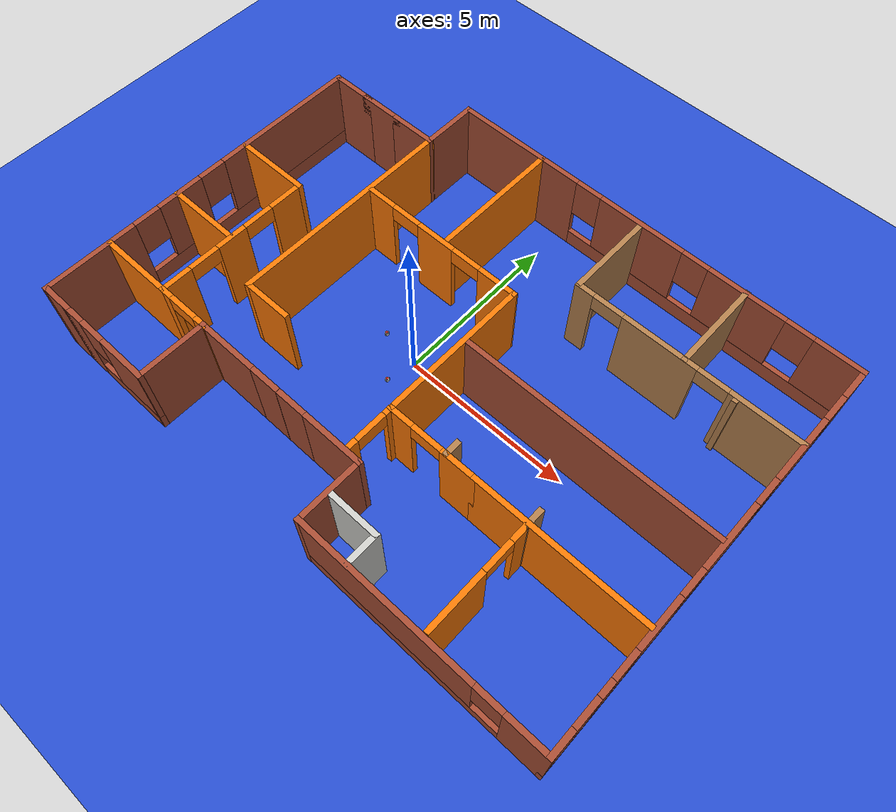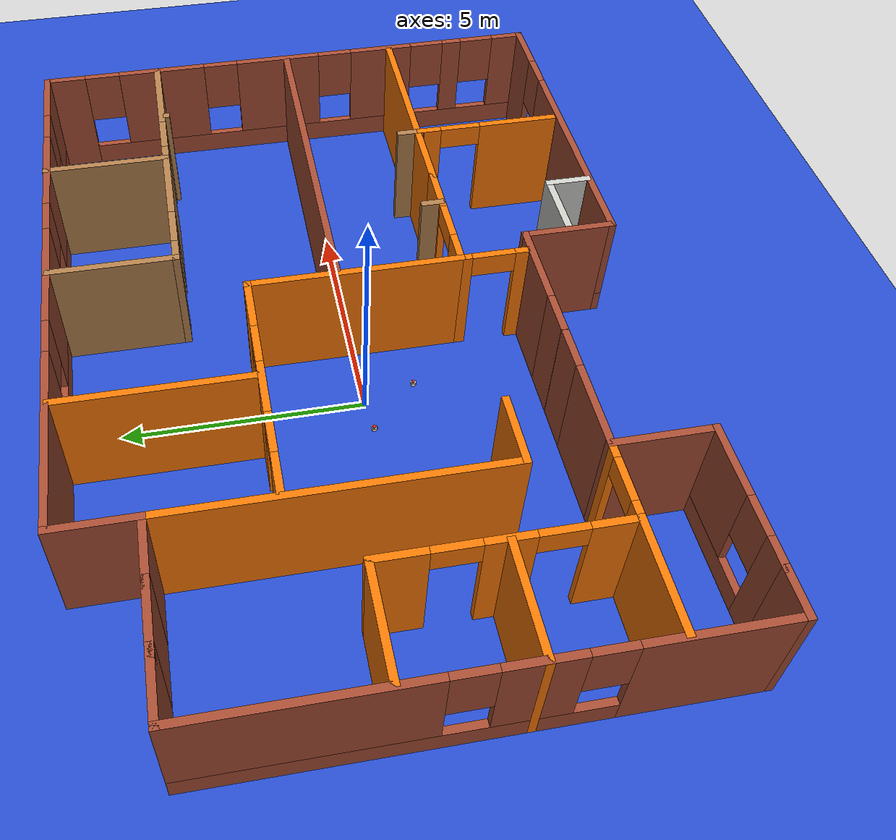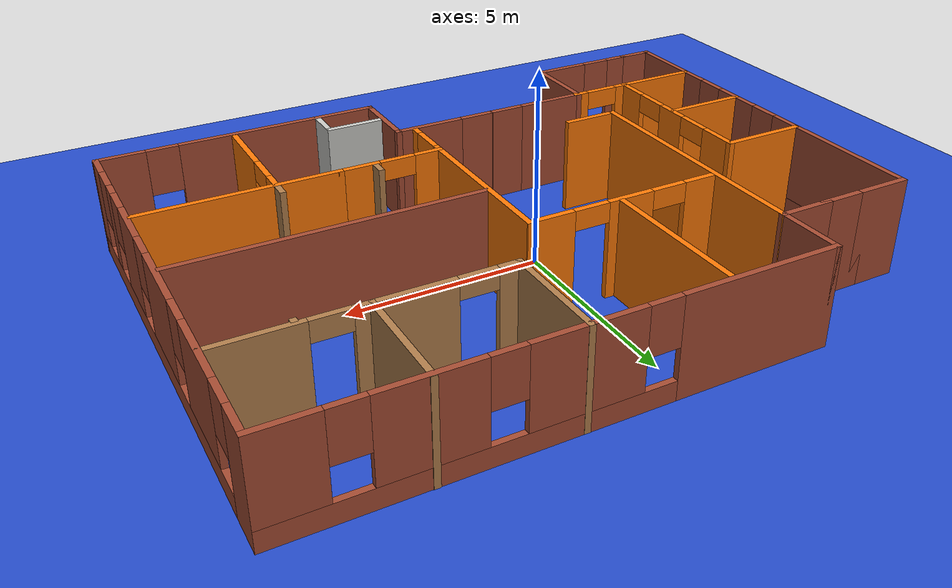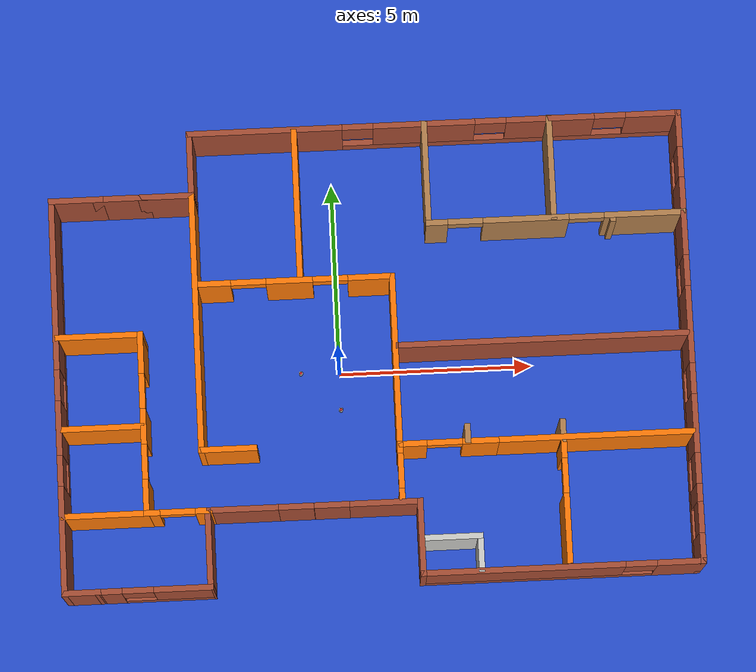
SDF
<sdf version="1.9">
 <world name="diff_drive">
  <physics name="default_physics" default="false" type="ode">
   <max_step_size>0.001</max_step_size>
   <real_time_factor>1</real_time_factor>
   <real_time_update_rate>1000</real_time_update_rate>
  </physics>
  <plugin name="ignition::gazebo::systems::Physics" filename="ignition-gazebo-physics-system"/>
  <plugin name="ignition::gazebo::systems::SceneBroadcaster" filename="ignition-gazebo-scene-broadcaster-system"/>
  <plugin name="gz::sim::systems::Sensors" filename="ignition-gazebo-sensors-system">
   <render_engine>ogre1</render_engine>
  </plugin>
  <gravity>0 0 -9.8</gravity>
  <magnetic_field>6e-06 2.3e-05 -4.2e-05</magnetic_field>
  <atmosphere type="adiabatic"/>
  <scene><ambient>0.4 0.4 0.4 1</ambient><background>0.7 0.7 0.7 1</background><shadows>true</shadows></scene>
  <model name="office">
   <pose>0.904802 0.213699 0 0 -0 0</pose>
   <link name="Wall_10">
    <collision name="Wall_10_Collision">
     <geometry><box><size>1 0.15 2.5</size></box></geometry>
     <pose>0 0 1.25 0 -0 0</pose>
    </collision>
    <visual name="Wall_10_Visual">
     <pose>0 0 1.25 0 -0 0</pose>
     <geometry><box><size>1 0.15 2.5</size></box></geometry>
     <material>
      <script><uri>file://media/materials/scripts/gazebo.material</uri><name>Gazebo/Bricks</name></script>
      <ambient>1 1 1 1</ambient>
     </material>
     <meta><layer>0</layer></meta>
    </visual>
    <pose>-7.67457 -5.85749 0 0 -0 3.14159</pose>
   </link>
   <link name="Wall_11">
    <pose>-8.09957 -0.807493 0 0 -0 1.5708</pose>
    <visual name="Wall_11_Visual_0">
     <pose>-3.7208 0 1.25 0 -0 0</pose>
     <geometry><box><size>2.8084 0.15 2.5</size></box></geometry>
     <material>
      <script><uri>file://media/materials/scripts/gazebo.material</uri><name>Gazebo/Bricks</name></script>
      <ambient>1 1 1 1</ambient>
     </material>
     <meta><layer>0</layer></meta>
    </visual>
    <collision name="Wall_11_Collision_0">
     <geometry><box><size>2.8084 0.15 2.5</size></box></geometry>
     <pose>-3.7208 0 1.25 0 -0 0</pose>
    </collision>
    <visual name="Wall_11_Visual_1">
     <pose>1.4042 0 0.25 0 -0 0</pose>
     <geometry><box><size>7.4416 0.15 0.5</size></box></geometry>
     <material>
      <script><uri>file://media/materials/scripts/gazebo.material</uri><name>Gazebo/Bricks</name></script>
      <ambient>1 1 1 1</ambient>
     </material>
     <meta><layer>0</layer></meta>
    </visual>
    <collision name="Wall_11_Collision_1">
     <geometry><box><size>7.4416 0.15 0.5</size></box></geometry>
     <pose>1.4042 0 0.25 0 -0 0</pose>
    </collision>
    <visual name="Wall_11_Visual_2">
     <pose>-0.81473 0 1.5 0 -0 0</pose>
     <geometry><box><size>1.40375 0.15 2</size></box></geometry>
     <material>
      <script><uri>file://media/materials/scripts/gazebo.material</uri><name>Gazebo/Bricks</name></script>
      <ambient>1 1 1 1</ambient>
     </material>
     <meta><layer>0</layer></meta>
    </visual>
    <collision name="Wall_11_Collision_2">
     <geometry><box><size>1.40375 0.15 2</size></box></geometry>
     <pose>-0.81473 0 1.5 0 -0 0</pose>
    </collision>
    <visual name="Wall_11_Visual_3">
     <pose>2.90607 0 1.5 0 -0 0</pose>
     <geometry><box><size>4.43786 0.15 2</size></box></geometry>
     <material>
      <script><uri>file://media/materials/scripts/gazebo.material</uri><name>Gazebo/Bricks</name></script>
      <ambient>1 1 1 1</ambient>
     </material>
     <meta><layer>0</layer></meta>
    </visual>
    <collision name="Wall_11_Collision_3">
     <geometry><box><size>4.43786 0.15 2</size></box></geometry>
     <pose>2.90607 0 1.5 0 -0 0</pose>
    </collision>
    <visual name="Wall_11_Visual_4">
     <pose>-1.9166 0 1.9 0 -0 0</pose>
     <geometry><box><size>0.8 0.15 1.2</size></box></geometry>
     <material>
      <script><uri>file://media/materials/scripts/gazebo.material</uri><name>Gazebo/Bricks</name></script>
      <ambient>1 1 1 1</ambient>
     </material>
     <meta><layer>0</layer></meta>
    </visual>
    <collision name="Wall_11_Collision_4">
     <geometry><box><size>0.8 0.15 1.2</size></box></geometry>
     <pose>-1.9166 0 1.9 0 -0 0</pose>
    </collision>
    <visual name="Wall_11_Visual_5">
     <pose>0.287144 0 1.9 0 -0 0</pose>
     <geometry><box><size>0.8 0.15 1.2</size></box></geometry>
     <material>
      <script><uri>file://media/materials/scripts/gazebo.material</uri><name>Gazebo/Bricks</name></script>
      <ambient>1 1 1 1</ambient>
     </material>
     <meta><layer>0</layer></meta>
    </visual>
    <collision name="Wall_11_Collision_5">
     <geometry><box><size>0.8 0.15 1.2</size></box></geometry>
     <pose>0.287144 0 1.9 0 -0 0</pose>
    </collision>
   </link>
   <link name="Wall_12">
    <pose>-6.29957 4.24251 0 0 -0 0</pose>
    <visual name="Wall_12_Visual_0">
     <pose>-1.17034 0 1.25 0 -0 0</pose>
     <geometry><box><size>1.40932 0.15 2.5</size></box></geometry>
     <material>
      <script><uri>file://media/materials/scripts/gazebo.material</uri><name>Gazebo/Bricks</name></script>
      <ambient>1 1 1 1</ambient>
     </material>
     <meta><layer>0</layer></meta>
    </visual>
    <collision name="Wall_12_Collision_0">
     <geometry><box><size>1.40932 0.15 2.5</size></box></geometry>
     <pose>-1.17034 0 1.25 0 -0 0</pose>
    </collision>
    <visual name="Wall_12_Visual_1">
     <pose>1.15466 0 1.25 0 -0 0</pose>
     <geometry><box><size>1.44068 0.15 2.5</size></box></geometry>
     <material>
      <script><uri>file://media/materials/scripts/gazebo.material</uri><name>Gazebo/Bricks</name></script>
      <ambient>1 1 1 1</ambient>
     </material>
     <meta><layer>0</layer></meta>
    </visual>
    <collision name="Wall_12_Collision_1">
     <geometry><box><size>1.44068 0.15 2.5</size></box></geometry>
     <pose>1.15466 0 1.25 0 -0 0</pose>
    </collision>
    <visual name="Wall_12_Visual_2">
     <pose>-0.015683 0 1.25 0 -0 0</pose>
     <geometry><box><size>1.44068 0.15 2.5</size></box></geometry>
     <material>
      <script><uri>file://media/materials/scripts/gazebo.material</uri><name>Gazebo/Bricks</name></script>
      <ambient>1 1 1 1</ambient>
     </material>
     <meta><layer>0</layer></meta>
    </visual>
    <collision name="Wall_12_Collision_2">
     <geometry><box><size>1.44068 0.15 2.5</size></box></geometry>
     <pose>-0.015683 0 1.25 0 -0 0</pose>
    </collision>
   </link>
   <link name="Wall_13">
    <collision name="Wall_13_Collision">
     <geometry><box><size>1.75 0.15 2.5</size></box></geometry>
     <pose>0 0 1.25 0 -0 0</pose>
    </collision>
    <visual name="Wall_13_Visual">
     <pose>0 0 1.25 0 -0 0</pose>
     <geometry><box><size>1.75 0.15 2.5</size></box></geometry>
     <material>
      <script><uri>file://media/materials/scripts/gazebo.material</uri><name>Gazebo/Bricks</name></script>
      <ambient>1 1 1 1</ambient>
     </material>
     <meta><layer>0</layer></meta>
    </visual>
    <pose>-4.49957 5.04251 0 0 -0 1.5708</pose>
   </link>
   <link name="Wall_14">
    <pose>1.80043 5.84251 0 0 -0 0</pose>
    <visual name="Wall_14_Visual_0">
     <pose>-4.36709 0 1.25 0 -0 0</pose>
     <geometry><box><size>4.01582 0.15 2.5</size></box></geometry>
     <material>
      <script><uri>file://media/materials/scripts/gazebo.material</uri><name>Gazebo/Bricks</name></script>
      <ambient>1 1 1 1</ambient>
     </material>
     <meta><layer>0</layer></meta>
    </visual>
    <collision name="Wall_14_Collision_0">
     <geometry><box><size>4.01582 0.15 2.5</size></box></geometry>
     <pose>-4.36709 0 1.25 0 -0 0</pose>
    </collision>
    <visual name="Wall_14_Visual_1">
     <pose>2.00791 0 0.25 0 -0 0</pose>
     <geometry><box><size>8.73418 0.15 0.5</size></box></geometry>
     <material>
      <script><uri>file://media/materials/scripts/gazebo.material</uri><name>Gazebo/Bricks</name></script>
      <ambient>1 1 1 1</ambient>
     </material>
     <meta><layer>0</layer></meta>
    </visual>
    <collision name="Wall_14_Collision_1">
     <geometry><box><size>8.73418 0.15 0.5</size></box></geometry>
     <pose>2.00791 0 0.25 0 -0 0</pose>
    </collision>
    <visual name="Wall_14_Visual_2">
     <pose>-0.245155 0 1.5 0 -0 0</pose>
     <geometry><box><size>2.62805 0.15 2</size></box></geometry>
     <material>
      <script><uri>file://media/materials/scripts/gazebo.material</uri><name>Gazebo/Bricks</name></script>
      <ambient>1 1 1 1</ambient>
     </material>
     <meta><layer>0</layer></meta>
    </visual>
    <collision name="Wall_14_Collision_2">
     <geometry><box><size>2.62805 0.15 2</size></box></geometry>
     <pose>-0.245155 0 1.5 0 -0 0</pose>
    </collision>
    <visual name="Wall_14_Visual_3">
     <pose>3.008 0 1.5 0 -0 0</pose>
     <geometry><box><size>2.27825 0.15 2</size></box></geometry>
     <material>
      <script><uri>file://media/materials/scripts/gazebo.material</uri><name>Gazebo/Bricks</name></script>
      <ambient>1 1 1 1</ambient>
     </material>
     <meta><layer>0</layer></meta>
    </visual>
    <collision name="Wall_14_Collision_3">
     <geometry><box><size>2.27825 0.15 2</size></box></geometry>
     <pose>3.008 0 1.5 0 -0 0</pose>
    </collision>
    <visual name="Wall_14_Visual_4">
     <pose>5.66106 0 1.5 0 -0 0</pose>
     <geometry><box><size>1.42788 0.15 2</size></box></geometry>
     <material>
      <script><uri>file://media/materials/scripts/gazebo.material</uri><name>Gazebo/Bricks</name></script>
      <ambient>1 1 1 1</ambient>
     </material>
     <meta><layer>0</layer></meta>
    </visual>
    <collision name="Wall_14_Collision_4">
     <geometry><box><size>1.42788 0.15 2</size></box></geometry>
     <pose>5.66106 0 1.5 0 -0 0</pose>
    </collision>
    <visual name="Wall_14_Visual_5">
     <pose>-1.95918 0 1.9 0 -0 0</pose>
     <geometry><box><size>0.8 0.15 1.2</size></box></geometry>
     <material>
      <script><uri>file://media/materials/scripts/gazebo.material</uri><name>Gazebo/Bricks</name></script>
      <ambient>1 1 1 1</ambient>
     </material>
     <meta><layer>0</layer></meta>
    </visual>
    <collision name="Wall_14_Collision_5">
     <geometry><box><size>0.8 0.15 1.2</size></box></geometry>
     <pose>-1.95918 0 1.9 0 -0 0</pose>
    </collision>
    <visual name="Wall_14_Visual_6">
     <pose>1.46887 0 1.9 0 -0 0</pose>
     <geometry><box><size>0.8 0.15 1.2</size></box></geometry>
     <material>
      <script><uri>file://media/materials/scripts/gazebo.material</uri><name>Gazebo/Bricks</name></script>
      <ambient>1 1 1 1</ambient>
     </material>
     <meta><layer>0</layer></meta>
    </visual>
    <collision name="Wall_14_Collision_6">
     <geometry><box><size>0.8 0.15 1.2</size></box></geometry>
     <pose>1.46887 0 1.9 0 -0 0</pose>
    </collision>
    <visual name="Wall_14_Visual_7">
     <pose>4.54712 0 1.9 0 -0 0</pose>
     <geometry><box><size>0.8 0.15 1.2</size></box></geometry>
     <material>
      <script><uri>file://media/materials/scripts/gazebo.material</uri><name>Gazebo/Bricks</name></script>
      <ambient>1 1 1 1</ambient>
     </material>
     <meta><layer>0</layer></meta>
    </visual>
    <collision name="Wall_14_Collision_7">
     <geometry><box><size>0.8 0.15 1.2</size></box></geometry>
     <pose>4.54712 0 1.9 0 -0 0</pose>
    </collision>
   </link>
   <link name="Wall_15">
    <pose>8.10043 0.042507 0 0 0 -1.5708</pose>
    <visual name="Wall_15_Visual_0">
     <pose>-5.39213 0 1.25 0 -0 0</pose>
     <geometry><box><size>0.965738 0.15 2.5</size></box></geometry>
     <material>
      <script><uri>file://media/materials/scripts/gazebo.material</uri><name>Gazebo/Bricks</name></script>
      <ambient>1 1 1 1</ambient>
     </material>
     <meta><layer>0</layer></meta>
    </visual>
    <collision name="Wall_15_Collision_0">
     <geometry><box><size>0.965738 0.15 2.5</size></box></geometry>
     <pose>-5.39213 0 1.25 0 -0 0</pose>
    </collision>
    <visual name="Wall_15_Visual_1">
     <pose>0.482869 0 0.25 0 -0 0</pose>
     <geometry><box><size>10.7843 0.15 0.5</size></box></geometry>
     <material>
      <script><uri>file://media/materials/scripts/gazebo.material</uri><name>Gazebo/Bricks</name></script>
      <ambient>1 1 1 1</ambient>
     </material>
     <meta><layer>0</layer></meta>
    </visual>
    <collision name="Wall_15_Collision_1">
     <geometry><box><size>10.7843 0.15 0.5</size></box></geometry>
     <pose>0.482869 0 0.25 0 -0 0</pose>
    </collision>
    <visual name="Wall_15_Visual_2">
     <pose>-3.09257 0 1.5 0 -0 0</pose>
     <geometry><box><size>2.03339 0.15 2</size></box></geometry>
     <material>
      <script><uri>file://media/materials/scripts/gazebo.material</uri><name>Gazebo/Bricks</name></script>
      <ambient>1 1 1 1</ambient>
     </material>
     <meta><layer>0</layer></meta>
    </visual>
    <collision name="Wall_15_Collision_2">
     <geometry><box><size>2.03339 0.15 2</size></box></geometry>
     <pose>-3.09257 0 1.5 0 -0 0</pose>
    </collision>
    <visual name="Wall_15_Visual_3">
     <pose>-0.276667 0 1.5 0 -0 0</pose>
     <geometry><box><size>1.99841 0.15 2</size></box></geometry>
     <material>
      <script><uri>file://media/materials/scripts/gazebo.material</uri><name>Gazebo/Bricks</name></script>
      <ambient>1 1 1 1</ambient>
     </material>
     <meta><layer>0</layer></meta>
    </visual>
    <collision name="Wall_15_Collision_3">
     <geometry><box><size>1.99841 0.15 2</size></box></geometry>
     <pose>-0.276667 0 1.5 0 -0 0</pose>
    </collision>
    <visual name="Wall_15_Visual_4">
     <pose>2.27688 0 1.5 0 -0 0</pose>
     <geometry><box><size>1.50869 0.15 2</size></box></geometry>
     <material>
      <script><uri>file://media/materials/scripts/gazebo.material</uri><name>Gazebo/Bricks</name></script>
      <ambient>1 1 1 1</ambient>
     </material>
     <meta><layer>0</layer></meta>
    </visual>
    <collision name="Wall_15_Collision_4">
     <geometry><box><size>1.50869 0.15 2</size></box></geometry>
     <pose>2.27688 0 1.5 0 -0 0</pose>
    </collision>
    <visual name="Wall_15_Visual_5">
     <pose>4.06087 0 1.5 0 -0 0</pose>
     <geometry><box><size>0.459284 0.15 2</size></box></geometry>
     <material>
      <script><uri>file://media/materials/scripts/gazebo.material</uri><name>Gazebo/Bricks</name></script>
      <ambient>1 1 1 1</ambient>
     </material>
     <meta><layer>0</layer></meta>
    </visual>
    <collision name="Wall_15_Collision_5">
     <geometry><box><size>0.459284 0.15 2</size></box></geometry>
     <pose>4.06087 0 1.5 0 -0 0</pose>
    </collision>
    <visual name="Wall_15_Visual_6">
     <pose>5.48276 0 1.5 0 -0 0</pose>
     <geometry><box><size>0.784489 0.15 2</size></box></geometry>
     <material>
      <script><uri>file://media/materials/scripts/gazebo.material</uri><name>Gazebo/Bricks</name></script>
      <ambient>1 1 1 1</ambient>
     </material>
     <meta><layer>0</layer></meta>
    </visual>
    <collision name="Wall_15_Collision_6">
     <geometry><box><size>0.784489 0.15 2</size></box></geometry>
     <pose>5.48276 0 1.5 0 -0 0</pose>
    </collision>
    <visual name="Wall_15_Visual_7">
     <pose>-4.50926 0 1.9 0 -0 0</pose>
     <geometry><box><size>0.8 0.15 1.2</size></box></geometry>
     <material>
      <script><uri>file://media/materials/scripts/gazebo.material</uri><name>Gazebo/Bricks</name></script>
      <ambient>1 1 1 1</ambient>
     </material>
     <meta><layer>0</layer></meta>
    </visual>
    <collision name="Wall_15_Collision_7">
     <geometry><box><size>0.8 0.15 1.2</size></box></geometry>
     <pose>-4.50926 0 1.9 0 -0 0</pose>
    </collision>
    <visual name="Wall_15_Visual_8">
     <pose>-1.67587 0 1.9 0 -0 0</pose>
     <geometry><box><size>0.8 0.15 1.2</size></box></geometry>
     <material>
      <script><uri>file://media/materials/scripts/gazebo.material</uri><name>Gazebo/Bricks</name></script>
      <ambient>1 1 1 1</ambient>
     </material>
     <meta><layer>0</layer></meta>
    </visual>
    <collision name="Wall_15_Collision_8">
     <geometry><box><size>0.8 0.15 1.2</size></box></geometry>
     <pose>-1.67587 0 1.9 0 -0 0</pose>
    </collision>
    <visual name="Wall_15_Visual_9">
     <pose>1.12254 0 1.9 0 -0 0</pose>
     <geometry><box><size>0.8 0.15 1.2</size></box></geometry>
     <material>
      <script><uri>file://media/materials/scripts/gazebo.material</uri><name>Gazebo/Bricks</name></script>
      <ambient>1 1 1 1</ambient>
     </material>
     <meta><layer>0</layer></meta>
    </visual>
    <collision name="Wall_15_Collision_9">
     <geometry><box><size>0.8 0.15 1.2</size></box></geometry>
     <pose>1.12254 0 1.9 0 -0 0</pose>
    </collision>
    <visual name="Wall_15_Visual_10">
     <pose>3.43123 0 1.9 0 -0 0</pose>
     <geometry><box><size>0.8 0.15 1.2</size></box></geometry>
     <material>
      <script><uri>file://media/materials/scripts/gazebo.material</uri><name>Gazebo/Bricks</name></script>
      <ambient>1 1 1 1</ambient>
     </material>
     <meta><layer>0</layer></meta>
    </visual>
    <collision name="Wall_15_Collision_10">
     <geometry><box><size>0.8 0.15 1.2</size></box></geometry>
     <pose>3.43123 0 1.9 0 -0 0</pose>
    </collision>
    <visual name="Wall_15_Visual_11">
     <pose>4.69051 0 1.9 0 -0 0</pose>
     <geometry><box><size>0.8 0.15 1.2</size></box></geometry>
     <material>
      <script><uri>file://media/materials/scripts/gazebo.material</uri><name>Gazebo/Bricks</name></script>
      <ambient>1 1 1 1</ambient>
     </material>
     <meta><layer>0</layer></meta>
    </visual>
    <collision name="Wall_15_Collision_11">
     <geometry><box><size>0.8 0.15 1.2</size></box></geometry>
     <pose>4.69051 0 1.9 0 -0 0</pose>
    </collision>
   </link>
   <link name="Wall_21">
    <pose>4.55043 -5.75749 0 0 -0 3.14159</pose>
    <visual name="Wall_21_Visual_0">
     <pose>-2.99851 0 1.25 0 -0 0</pose>
     <geometry><box><size>1.25298 0.15 2.5</size></box></geometry>
     <material>
      <script><uri>file://media/materials/scripts/gazebo.material</uri><name>Gazebo/Bricks</name></script>
      <ambient>1 1 1 1</ambient>
     </material>
     <meta><layer>0</layer></meta>
    </visual>
    <collision name="Wall_21_Collision_0">
     <geometry><box><size>1.25298 0.15 2.5</size></box></geometry>
     <pose>-2.99851 0 1.25 0 -0 0</pose>
    </collision>
    <visual name="Wall_21_Visual_1">
     <pose>0.626488 0 0.25 0 -0 0</pose>
     <geometry><box><size>5.99702 0.15 0.5</size></box></geometry>
     <material>
      <script><uri>file://media/materials/scripts/gazebo.material</uri><name>Gazebo/Bricks</name></script>
      <ambient>1 1 1 1</ambient>
     </material>
     <meta><layer>0</layer></meta>
    </visual>
    <collision name="Wall_21_Collision_1">
     <geometry><box><size>5.99702 0.15 0.5</size></box></geometry>
     <pose>0.626488 0 0.25 0 -0 0</pose>
    </collision>
    <visual name="Wall_21_Visual_2">
     <pose>1.02649 0 1.5 0 -0 0</pose>
     <geometry><box><size>5.19702 0.15 2</size></box></geometry>
     <material>
      <script><uri>file://media/materials/scripts/gazebo.material</uri><name>Gazebo/Bricks</name></script>
      <ambient>1 1 1 1</ambient>
     </material>
     <meta><layer>0</layer></meta>
    </visual>
    <collision name="Wall_21_Collision_2">
     <geometry><box><size>5.19702 0.15 2</size></box></geometry>
     <pose>1.02649 0 1.5 0 -0 0</pose>
    </collision>
    <visual name="Wall_21_Visual_3">
     <pose>-1.97202 0 1.9 0 -0 0</pose>
     <geometry><box><size>0.8 0.15 1.2</size></box></geometry>
     <material>
      <script><uri>file://media/materials/scripts/gazebo.material</uri><name>Gazebo/Bricks</name></script>
      <ambient>1 1 1 1</ambient>
     </material>
     <meta><layer>0</layer></meta>
    </visual>
    <collision name="Wall_21_Collision_3">
     <geometry><box><size>0.8 0.15 1.2</size></box></geometry>
     <pose>-1.97202 0 1.9 0 -0 0</pose>
    </collision>
   </link>
   <link name="Wall_22">
    <collision name="Wall_22_Collision">
     <geometry><box><size>2 0.15 2.5</size></box></geometry>
     <pose>0 0 1.25 0 -0 0</pose>
    </collision>
    <visual name="Wall_22_Visual">
     <pose>0 0 1.25 0 -0 0</pose>
     <geometry><box><size>2 0.15 2.5</size></box></geometry>
     <material>
      <script><uri>file://media/materials/scripts/gazebo.material</uri><name>Gazebo/Bricks</name></script>
      <ambient>1 1 1 1</ambient>
     </material>
     <meta><layer>0</layer></meta>
    </visual>
    <pose>1.00043 -4.83249 0 0 -0 1.5708</pose>
   </link>
   <link name="Wall_23">
    <pose>-1.67457 -3.90749 0 0 -0 3.14159</pose>
    <visual name="Wall_23_Visual_0">
     <pose>-1.81572 0 1.25 0 -0 0</pose>
     <geometry><box><size>1.86857 0.15 2.5</size></box></geometry>
     <material>
      <script><uri>file://media/materials/scripts/gazebo.material</uri><name>Gazebo/Bricks</name></script>
      <ambient>1 1 1 1</ambient>
     </material>
     <meta><layer>0</layer></meta>
    </visual>
    <collision name="Wall_23_Collision_0">
     <geometry><box><size>1.86857 0.15 2.5</size></box></geometry>
     <pose>-1.81572 0 1.25 0 -0 0</pose>
    </collision>
    <visual name="Wall_23_Visual_1">
     <pose>0.023306 0 1.25 0 -0 0</pose>
     <geometry><box><size>0.009483 0.15 2.5</size></box></geometry>
     <material>
      <script><uri>file://media/materials/scripts/gazebo.material</uri><name>Gazebo/Bricks</name></script>
      <ambient>1 1 1 1</ambient>
     </material>
     <meta><layer>0</layer></meta>
    </visual>
    <collision name="Wall_23_Collision_1">
     <geometry><box><size>0.009483 0.15 2.5</size></box></geometry>
     <pose>0.023306 0 1.25 0 -0 0</pose>
    </collision>
    <visual name="Wall_23_Visual_2">
     <pose>1.83902 0 1.25 0 -0 0</pose>
     <geometry><box><size>1.82195 0.15 2.5</size></box></geometry>
     <material>
      <script><uri>file://media/materials/scripts/gazebo.material</uri><name>Gazebo/Bricks</name></script>
      <ambient>1 1 1 1</ambient>
     </material>
     <meta><layer>0</layer></meta>
    </visual>
    <collision name="Wall_23_Collision_2">
     <geometry><box><size>1.82195 0.15 2.5</size></box></geometry>
     <pose>1.83902 0 1.25 0 -0 0</pose>
    </collision>
    <visual name="Wall_23_Visual_3">
     <pose>-0.431435 0 1.25 0 -0 0</pose>
     <geometry><box><size>0.9 0.15 2.5</size></box></geometry>
     <material>
      <script><uri>file://media/materials/scripts/gazebo.material</uri><name>Gazebo/Bricks</name></script>
      <ambient>1 1 1 1</ambient>
     </material>
     <meta><layer>0</layer></meta>
    </visual>
    <collision name="Wall_23_Collision_3">
     <geometry><box><size>0.9 0.15 2.5</size></box></geometry>
     <pose>-0.431435 0 1.25 0 -0 0</pose>
    </collision>
    <visual name="Wall_23_Visual_4">
     <pose>0.478048 0 1.25 0 -0 0</pose>
     <geometry><box><size>0.9 0.15 2.5</size></box></geometry>
     <material>
      <script><uri>file://media/materials/scripts/gazebo.material</uri><name>Gazebo/Bricks</name></script>
      <ambient>1 1 1 1</ambient>
     </material>
     <meta><layer>0</layer></meta>
    </visual>
    <collision name="Wall_23_Collision_4">
     <geometry><box><size>0.9 0.15 2.5</size></box></geometry>
     <pose>0.478048 0 1.25 0 -0 0</pose>
    </collision>
   </link>
   <link name="Wall_25">
    <pose>-5.14957 -3.90749 0 0 -0 3.14159</pose>
    <visual name="Wall_25_Visual_0">
     <pose>-0.656831 0 1.25 0 -0 0</pose>
     <geometry><box><size>0.436339 0.15 2.5</size></box></geometry>
     <material>
      <script><uri>file://media/materials/scripts/gazebo.material</uri><name>Gazebo/Grey</name></script>
      <ambient>0.996078 0.47451 0.0196078 1</ambient>
     </material>
     <meta><layer>0</layer></meta>
    </visual>
    <collision name="Wall_25_Collision_0">
     <geometry><box><size>0.436339 0.15 2.5</size></box></geometry>
     <pose>-0.656831 0 1.25 0 -0 0</pose>
    </collision>
    <visual name="Wall_25_Visual_1">
     <pose>0.668169 0 1.25 0 -0 0</pose>
     <geometry><box><size>0.413661 0.15 2.5</size></box></geometry>
     <material>
      <script><uri>file://media/materials/scripts/gazebo.material</uri><name>Gazebo/Grey</name></script>
      <ambient>0.996078 0.47451 0.0196078 1</ambient>
     </material>
     <meta><layer>0</layer></meta>
    </visual>
    <collision name="Wall_25_Collision_1">
     <geometry><box><size>0.413661 0.15 2.5</size></box></geometry>
     <pose>0.668169 0 1.25 0 -0 0</pose>
    </collision>
    <visual name="Wall_25_Visual_2">
     <pose>0.011339 0 2.25 0 -0 0</pose>
     <geometry><box><size>0.9 0.15 0.5</size></box></geometry>
     <material>
      <script><uri>file://media/materials/scripts/gazebo.material</uri><name>Gazebo/Grey</name></script>
      <ambient>0.996078 0.47451 0.0196078 1</ambient>
     </material>
     <meta><layer>0</layer></meta>
    </visual>
    <collision name="Wall_25_Collision_2">
     <geometry><box><size>0.9 0.15 0.5</size></box></geometry>
     <pose>0.011339 0 2.25 0 -0 0</pose>
    </collision>
   </link>
   <link name="Wall_26">
    <pose>-5.94957 -1.60749 0 0 -0 1.5708</pose>
    <visual name="Wall_26_Visual_0">
     <pose>-1.90084 0 1.25 0 -0 0</pose>
     <geometry><box><size>0.948317 0.15 2.5</size></box></geometry>
     <material>
      <script><uri>file://media/materials/scripts/gazebo.material</uri><name>Gazebo/Grey</name></script>
      <ambient>0.996078 0.47451 0.0196078 1</ambient>
     </material>
     <meta><layer>0</layer></meta>
    </visual>
    <collision name="Wall_26_Collision_0">
     <geometry><box><size>0.948317 0.15 2.5</size></box></geometry>
     <pose>-1.90084 0 1.25 0 -0 0</pose>
    </collision>
    <visual name="Wall_26_Visual_1">
     <pose>-0.0672 0 1.25 0 -0 0</pose>
     <geometry><box><size>0.918967 0.15 2.5</size></box></geometry>
     <material>
      <script><uri>file://media/materials/scripts/gazebo.material</uri><name>Gazebo/Grey</name></script>
      <ambient>0.996078 0.47451 0.0196078 1</ambient>
     </material>
     <meta><layer>0</layer></meta>
    </visual>
    <collision name="Wall_26_Collision_1">
     <geometry><box><size>0.918967 0.15 2.5</size></box></geometry>
     <pose>-0.0672 0 1.25 0 -0 0</pose>
    </collision>
    <visual name="Wall_26_Visual_2">
     <pose>1.83364 0 1.25 0 -0 0</pose>
     <geometry><box><size>1.08272 0.15 2.5</size></box></geometry>
     <material>
      <script><uri>file://media/materials/scripts/gazebo.material</uri><name>Gazebo/Grey</name></script>
      <ambient>0.996078 0.47451 0.0196078 1</ambient>
     </material>
     <meta><layer>0</layer></meta>
    </visual>
    <collision name="Wall_26_Collision_2">
     <geometry><box><size>1.08272 0.15 2.5</size></box></geometry>
     <pose>1.83364 0 1.25 0 -0 0</pose>
    </collision>
    <visual name="Wall_26_Visual_3">
     <pose>-0.976683 0 2.25 0 -0 0</pose>
     <geometry><box><size>0.9 0.15 0.5</size></box></geometry>
     <material>
      <script><uri>file://media/materials/scripts/gazebo.material</uri><name>Gazebo/Grey</name></script>
      <ambient>0.996078 0.47451 0.0196078 1</ambient>
     </material>
     <meta><layer>0</layer></meta>
    </visual>
    <collision name="Wall_26_Collision_3">
     <geometry><box><size>0.9 0.15 0.5</size></box></geometry>
     <pose>-0.976683 0 2.25 0 -0 0</pose>
    </collision>
    <visual name="Wall_26_Visual_4">
     <pose>0.842283 0 2.25 0 -0 0</pose>
     <geometry><box><size>0.9 0.15 0.5</size></box></geometry>
     <material>
      <script><uri>file://media/materials/scripts/gazebo.material</uri><name>Gazebo/Grey</name></script>
      <ambient>0.996078 0.47451 0.0196078 1</ambient>
     </material>
     <meta><layer>0</layer></meta>
    </visual>
    <collision name="Wall_26_Collision_4">
     <geometry><box><size>0.9 0.15 0.5</size></box></geometry>
     <pose>0.842283 0 2.25 0 -0 0</pose>
    </collision>
   </link>
   <link name="Wall_29">
    <collision name="Wall_29_Collision">
     <geometry><box><size>2.25 0.15 2.5</size></box></geometry>
     <pose>0 0 1.25 0 -0 0</pose>
    </collision>
    <visual name="Wall_29_Visual">
     <pose>0 0 1.25 0 -0 0</pose>
     <geometry><box><size>2.25 0.15 2.5</size></box></geometry>
     <material>
      <script><uri>file://media/materials/scripts/gazebo.material</uri><name>Gazebo/Grey</name></script>
      <ambient>0.996078 0.47451 0.0196078 1</ambient>
     </material>
     <meta><layer>0</layer></meta>
    </visual>
    <pose>-6.99957 0.692507 0 0 -0 3.14159</pose>
   </link>
   <link name="Wall_31">
    <collision name="Wall_31_Collision">
     <geometry><box><size>6.75 0.15 2.5</size></box></geometry>
     <pose>0 0 1.25 0 -0 0</pose>
    </collision>
    <visual name="Wall_31_Visual">
     <pose>0 0 1.25 0 -0 0</pose>
     <geometry><box><size>6.75 0.15 2.5</size></box></geometry>
     <material>
      <script><uri>file://media/materials/scripts/gazebo.material</uri><name>Gazebo/Grey</name></script>
      <ambient>0.996078 0.47451 0.0196078 1</ambient>
     </material>
     <meta><layer>0</layer></meta>
    </visual>
    <pose>-4.49978 0.942713 0 0 0 -1.57086</pose>
   </link>
   <link name="Wall_32">
    <collision name="Wall_32_Collision">
     <geometry><box><size>1.5 0.15 2.5</size></box></geometry>
     <pose>0 0 1.25 0 -0 0</pose>
    </collision>
    <visual name="Wall_32_Visual">
     <pose>0 0 1.25 0 -0 0</pose>
     <geometry><box><size>1.5 0.15 2.5</size></box></geometry>
     <material>
      <script><uri>file://media/materials/scripts/gazebo.material</uri><name>Gazebo/Grey</name></script>
      <ambient>0.996078 0.47451 0.0196078 1</ambient>
     </material>
     <meta><layer>0</layer></meta>
    </visual>
    <pose>-3.82498 -2.35708 0 0 -0 0</pose>
   </link>
   <link name="Wall_34">
    <collision name="Wall_34_Collision">
     <geometry><box><size>4.5 0.15 2.5</size></box></geometry>
     <pose>0 0 1.25 0 -0 0</pose>
    </collision>
    <visual name="Wall_34_Visual">
     <pose>0 0 1.25 0 -0 0</pose>
     <geometry><box><size>4.5 0.15 2.5</size></box></geometry>
     <material>
      <script><uri>file://media/materials/scripts/gazebo.material</uri><name>Gazebo/Grey</name></script>
      <ambient>0.996078 0.47451 0.0196078 1</ambient>
     </material>
     <meta><layer>0</layer></meta>
    </visual>
    <pose>0.554111 -0.259019 0 0 -0 1.57084</pose>
   </link>
   <link name="Wall_37">
    <pose>-1.92098 1.91592 0 0 -0 3.14159</pose>
    <visual name="Wall_37_Visual_0">
     <pose>-1.94386 0 1.25 0 -0 0</pose>
     <geometry><box><size>1.21227 0.15 2.5</size></box></geometry>
     <material>
      <script><uri>file://media/materials/scripts/gazebo.material</uri><name>Gazebo/Grey</name></script>
      <ambient>0.996078 0.47451 0.0196078 1</ambient>
     </material>
     <meta><layer>0</layer></meta>
    </visual>
    <collision name="Wall_37_Collision_0">
     <geometry><box><size>1.21227 0.15 2.5</size></box></geometry>
     <pose>-1.94386 0 1.25 0 -0 0</pose>
    </collision>
    <visual name="Wall_37_Visual_1">
     <pose>0.161675 0 1.25 0 -0 0</pose>
     <geometry><box><size>1.19881 0.15 2.5</size></box></geometry>
     <material>
      <script><uri>file://media/materials/scripts/gazebo.material</uri><name>Gazebo/Grey</name></script>
      <ambient>0.996078 0.47451 0.0196078 1</ambient>
     </material>
     <meta><layer>0</layer></meta>
    </visual>
    <collision name="Wall_37_Collision_1">
     <geometry><box><size>1.19881 0.15 2.5</size></box></geometry>
     <pose>0.161675 0 1.25 0 -0 0</pose>
    </collision>
    <visual name="Wall_37_Visual_2">
     <pose>2.10554 0 1.25 0 -0 0</pose>
     <geometry><box><size>0.888921 0.15 2.5</size></box></geometry>
     <material>
      <script><uri>file://media/materials/scripts/gazebo.material</uri><name>Gazebo/Grey</name></script>
      <ambient>0.996078 0.47451 0.0196078 1</ambient>
     </material>
     <meta><layer>0</layer></meta>
    </visual>
    <collision name="Wall_37_Collision_2">
     <geometry><box><size>0.888921 0.15 2.5</size></box></geometry>
     <pose>2.10554 0 1.25 0 -0 0</pose>
    </collision>
    <visual name="Wall_37_Visual_3">
     <pose>-0.887729 0 2.25 0 -0 0</pose>
     <geometry><box><size>0.9 0.15 0.5</size></box></geometry>
     <material>
      <script><uri>file://media/materials/scripts/gazebo.material</uri><name>Gazebo/Grey</name></script>
      <ambient>0.996078 0.47451 0.0196078 1</ambient>
     </material>
     <meta><layer>0</layer></meta>
    </visual>
    <collision name="Wall_37_Collision_3">
     <geometry><box><size>0.9 0.15 0.5</size></box></geometry>
     <pose>-0.887729 0 2.25 0 -0 0</pose>
    </collision>
    <visual name="Wall_37_Visual_4">
     <pose>1.21108 0 2.25 0 -0 0</pose>
     <geometry><box><size>0.9 0.15 0.5</size></box></geometry>
     <material>
      <script><uri>file://media/materials/scripts/gazebo.material</uri><name>Gazebo/Grey</name></script>
      <ambient>0.996078 0.47451 0.0196078 1</ambient>
     </material>
     <meta><layer>0</layer></meta>
    </visual>
    <collision name="Wall_37_Collision_4">
     <geometry><box><size>0.9 0.15 0.5</size></box></geometry>
     <pose>1.21108 0 2.25 0 -0 0</pose>
    </collision>
   </link>
   <link name="Wall_39">
    <pose>1.85421 -2.43396 0 0 -0 0</pose>
    <visual name="Wall_39_Visual_0">
     <pose>-0.992004 0 1.25 0 -0 0</pose>
     <geometry><box><size>0.765991 0.15 2.5</size></box></geometry>
     <material>
      <script><uri>file://media/materials/scripts/gazebo.material</uri><name>Gazebo/Grey</name></script>
      <ambient>0.996078 0.47451 0.0196078 1</ambient>
     </material>
     <meta><layer>0</layer></meta>
    </visual>
    <collision name="Wall_39_Collision_0">
     <geometry><box><size>0.765991 0.15 2.5</size></box></geometry>
     <pose>-0.992004 0 1.25 0 -0 0</pose>
    </collision>
    <visual name="Wall_39_Visual_1">
     <pose>0.832996 0 1.25 0 -0 0</pose>
     <geometry><box><size>1.08401 0.15 2.5</size></box></geometry>
     <material>
      <script><uri>file://media/materials/scripts/gazebo.material</uri><name>Gazebo/Grey</name></script>
      <ambient>0.996078 0.47451 0.0196078 1</ambient>
     </material>
     <meta><layer>0</layer></meta>
    </visual>
    <collision name="Wall_39_Collision_1">
     <geometry><box><size>1.08401 0.15 2.5</size></box></geometry>
     <pose>0.832996 0 1.25 0 -0 0</pose>
    </collision>
    <visual name="Wall_39_Visual_2">
     <pose>-0.159009 0 2.25 0 -0 0</pose>
     <geometry><box><size>0.9 0.15 0.5</size></box></geometry>
     <material>
      <script><uri>file://media/materials/scripts/gazebo.material</uri><name>Gazebo/Grey</name></script>
      <ambient>0.996078 0.47451 0.0196078 1</ambient>
     </material>
     <meta><layer>0</layer></meta>
    </visual>
    <collision name="Wall_39_Collision_2">
     <geometry><box><size>0.9 0.15 0.5</size></box></geometry>
     <pose>-0.159009 0 2.25 0 -0 0</pose>
    </collision>
   </link>
   <link name="Wall_40">
    <collision name="Wall_40_Collision">
     <geometry><box><size>5 0.15 2.5</size></box></geometry>
     <pose>0 0 1.25 0 -0 0</pose>
    </collision>
    <visual name="Wall_40_Visual">
     <pose>0 0 1.25 0 -0 0</pose>
     <geometry><box><size>5 0.15 2.5</size></box></geometry>
     <material>
      <script><uri>file://media/materials/scripts/gazebo.material</uri><name>Gazebo/Grey</name></script>
      <ambient>0.996078 0.47451 0.0196078 1</ambient>
     </material>
     <meta><layer>0</layer></meta>
    </visual>
    <pose>5.5792 -2.43396 0 0 -0 0</pose>
   </link>
   <link name="Wall_42">
    <pose>4.72121 -4.04494 0 0 0 -1.57067</pose>
    <visual name="Wall_42_Visual_0">
     <pose>-1.34812 0 1.25 0 -0 0</pose>
     <geometry><box><size>0.553762 0.15 2.5</size></box></geometry>
     <material>
      <script><uri>file://media/materials/scripts/gazebo.material</uri><name>Gazebo/Grey</name></script>
      <ambient>0.996078 0.47451 0.0196078 1</ambient>
     </material>
     <meta><layer>0</layer></meta>
    </visual>
    <collision name="Wall_42_Collision_0">
     <geometry><box><size>0.553762 0.15 2.5</size></box></geometry>
     <pose>-1.34812 0 1.25 0 -0 0</pose>
    </collision>
    <visual name="Wall_42_Visual_1">
     <pose>0.726881 0 1.25 0 -0 0</pose>
     <geometry><box><size>1.79624 0.15 2.5</size></box></geometry>
     <material>
      <script><uri>file://media/materials/scripts/gazebo.material</uri><name>Gazebo/Grey</name></script>
      <ambient>0.996078 0.47451 0.0196078 1</ambient>
     </material>
     <meta><layer>0</layer></meta>
    </visual>
    <collision name="Wall_42_Collision_1">
     <geometry><box><size>1.79624 0.15 2.5</size></box></geometry>
     <pose>0.726881 0 1.25 0 -0 0</pose>
    </collision>
    <visual name="Wall_42_Visual_2">
     <pose>-0.621238 0 2.25 0 -0 0</pose>
     <geometry><box><size>0.9 0.15 0.5</size></box></geometry>
     <material>
      <script><uri>file://media/materials/scripts/gazebo.material</uri><name>Gazebo/Grey</name></script>
      <ambient>0.996078 0.47451 0.0196078 1</ambient>
     </material>
     <meta><layer>0</layer></meta>
    </visual>
    <collision name="Wall_42_Collision_2">
     <geometry><box><size>0.9 0.15 0.5</size></box></geometry>
     <pose>-0.621238 0 2.25 0 -0 0</pose>
    </collision>
   </link>
   <link name="Wall_44">
    <collision name="Wall_44_Collision">
     <geometry><box><size>7.5 0.15 2.5</size></box></geometry>
     <pose>0 0 1.25 0 -0 0</pose>
    </collision>
    <visual name="Wall_44_Visual">
     <pose>0 0 1.25 0 -0 0</pose>
     <geometry><box><size>7.5 0.15 2.5</size></box></geometry>
     <material>
      <script><uri>file://media/materials/scripts/gazebo.material</uri><name>Gazebo/Bricks</name></script>
      <ambient>0.996078 0.47451 0.0196078 1</ambient>
     </material>
     <meta><layer>0</layer></meta>
    </visual>
    <pose>4.32079 0.109293 0 0 -0 0</pose>
   </link>
   <link name="Wall_46">
    <collision name="Wall_46_Collision">
     <geometry><box><size>3.9 0.15 2.5</size></box></geometry>
     <pose>0 0 1.25 0 -0 0</pose>
    </collision>
    <visual name="Wall_46_Visual">
     <pose>0 0 1.25 0 -0 0</pose>
     <geometry><box><size>3.9 0.15 2.5</size></box></geometry>
     <material>
      <script><uri>file://media/materials/scripts/gazebo.material</uri><name>Gazebo/Grey</name></script>
      <ambient>0.996078 0.47451 0.0196078 1</ambient>
     </material>
     <meta><layer>0</layer></meta>
    </visual>
    <pose>-1.80298 3.90792 0 0 -0 1.5708</pose>
   </link>
   <link name="Wall_48">
    <pose>0.554205 -3.10896 0 0 0 -1.5708</pose>
    <visual name="Wall_48_Visual_0">
     <pose>-0.600039 0 1.25 0 -0 0</pose>
     <geometry><box><size>0.299922 0.15 2.5</size></box></geometry>
     <material>
      <script><uri>file://media/materials/scripts/gazebo.material</uri><name>Gazebo/Grey</name></script>
      <ambient>0.996078 0.47451 0.0196078 1</ambient>
     </material>
     <meta><layer>0</layer></meta>
    </visual>
    <collision name="Wall_48_Collision_0">
     <geometry><box><size>0.299922 0.15 2.5</size></box></geometry>
     <pose>-0.600039 0 1.25 0 -0 0</pose>
    </collision>
    <visual name="Wall_48_Visual_1">
     <pose>0.599961 0 1.25 0 -0 0</pose>
     <geometry><box><size>0.300078 0.15 2.5</size></box></geometry>
     <material>
      <script><uri>file://media/materials/scripts/gazebo.material</uri><name>Gazebo/Grey</name></script>
      <ambient>0.996078 0.47451 0.0196078 1</ambient>
     </material>
     <meta><layer>0</layer></meta>
    </visual>
    <collision name="Wall_48_Collision_1">
     <geometry><box><size>0.300078 0.15 2.5</size></box></geometry>
     <pose>0.599961 0 1.25 0 -0 0</pose>
    </collision>
    <visual name="Wall_48_Visual_2">
     <pose>-7.8e-05 0 2.25 0 -0 0</pose>
     <geometry><box><size>0.9 0.15 0.5</size></box></geometry>
     <material>
      <script><uri>file://media/materials/scripts/gazebo.material</uri><name>Gazebo/Grey</name></script>
      <ambient>0.996078 0.47451 0.0196078 1</ambient>
     </material>
     <meta><layer>0</layer></meta>
    </visual>
    <collision name="Wall_48_Collision_2">
     <geometry><box><size>0.9 0.15 0.5</size></box></geometry>
     <pose>-7.8e-05 0 2.25 0 -0 0</pose>
    </collision>
   </link>
   <link name="Wall_53">
    <collision name="Wall_53_Collision">
     <geometry><box><size>0.15 0.15 2.5</size></box></geometry>
     <pose>0 0 1.25 0 -0 0</pose>
    </collision>
    <visual name="Wall_53_Visual">
     <pose>0 0 1.25 0 -0 0</pose>
     <geometry><box><size>0.15 0.15 2.5</size></box></geometry>
     <material>
      <script><uri>file://media/materials/scripts/gazebo.material</uri><name>Gazebo/Wood</name></script>
      <ambient>1 1 1 1</ambient>
     </material>
     <meta><layer>0</layer></meta>
    </visual>
    <pose>6.28571 3.14109 0 0 -0 0</pose>
   </link>
   <link name="Wall_55">
    <collision name="Wall_55_Collision">
     <geometry><box><size>2.75 0.15 2.5</size></box></geometry>
     <pose>0 0 1.25 0 -0 0</pose>
    </collision>
    <visual name="Wall_55_Visual">
     <pose>0 0 1.25 0 -0 0</pose>
     <geometry><box><size>2.75 0.15 2.5</size></box></geometry>
     <material>
      <script><uri>file://media/materials/scripts/gazebo.material</uri><name>Gazebo/Wood</name></script>
      <ambient>1 1 1 1</ambient>
     </material>
     <meta><layer>0</layer></meta>
    </visual>
    <pose>1.55515 4.54598 0 0 0 -1.57089</pose>
   </link>
   <link name="Wall_56">
    <pose>4.81502 3.24592 0 0 -0 0</pose>
    <visual name="Wall_56_Visual_0">
     <pose>-3.05014 0 1.25 0 -0 0</pose>
     <geometry><box><size>0.569721 0.15 2.5</size></box></geometry>
     <material>
      <script><uri>file://media/materials/scripts/gazebo.material</uri><name>Gazebo/Wood</name></script>
      <ambient>1 1 1 1</ambient>
     </material>
     <meta><layer>0</layer></meta>
    </visual>
    <collision name="Wall_56_Collision_0">
     <geometry><box><size>0.569721 0.15 2.5</size></box></geometry>
     <pose>-3.05014 0 1.25 0 -0 0</pose>
    </collision>
    <visual name="Wall_56_Visual_1">
     <pose>-0.758663 0 1.25 0 -0 0</pose>
     <geometry><box><size>2.21323 0.15 2.5</size></box></geometry>
     <material>
      <script><uri>file://media/materials/scripts/gazebo.material</uri><name>Gazebo/Wood</name></script>
      <ambient>1 1 1 1</ambient>
     </material>
     <meta><layer>0</layer></meta>
    </visual>
    <collision name="Wall_56_Collision_1">
     <geometry><box><size>2.21323 0.15 2.5</size></box></geometry>
     <pose>-0.758663 0 1.25 0 -0 0</pose>
    </collision>
    <visual name="Wall_56_Visual_2">
     <pose>2.29148 0 1.25 0 -0 0</pose>
     <geometry><box><size>2.08705 0.15 2.5</size></box></geometry>
     <material>
      <script><uri>file://media/materials/scripts/gazebo.material</uri><name>Gazebo/Wood</name></script>
      <ambient>1 1 1 1</ambient>
     </material>
     <meta><layer>0</layer></meta>
    </visual>
    <collision name="Wall_56_Collision_2">
     <geometry><box><size>2.08705 0.15 2.5</size></box></geometry>
     <pose>2.29148 0 1.25 0 -0 0</pose>
    </collision>
    <visual name="Wall_56_Visual_3">
     <pose>-2.31528 0 2.25 0 -0 0</pose>
     <geometry><box><size>0.9 0.15 0.5</size></box></geometry>
     <material>
      <script><uri>file://media/materials/scripts/gazebo.material</uri><name>Gazebo/Wood</name></script>
      <ambient>1 1 1 1</ambient>
     </material>
     <meta><layer>0</layer></meta>
    </visual>
    <collision name="Wall_56_Collision_3">
     <geometry><box><size>0.9 0.15 0.5</size></box></geometry>
     <pose>-2.31528 0 2.25 0 -0 0</pose>
    </collision>
    <visual name="Wall_56_Visual_4">
     <pose>0.797952 0 2.25 0 -0 0</pose>
     <geometry><box><size>0.9 0.15 0.5</size></box></geometry>
     <material>
      <script><uri>file://media/materials/scripts/gazebo.material</uri><name>Gazebo/Wood</name></script>
      <ambient>1 1 1 1</ambient>
     </material>
     <meta><layer>0</layer></meta>
    </visual>
    <collision name="Wall_56_Collision_4">
     <geometry><box><size>0.9 0.15 0.5</size></box></geometry>
     <pose>0.797952 0 2.25 0 -0 0</pose>
    </collision>
   </link>
   <link name="Wall_58">
    <collision name="Wall_58_Collision">
     <geometry><box><size>2.75 0.15 2.5</size></box></geometry>
     <pose>0 0 1.25 0 -0 0</pose>
    </collision>
    <visual name="Wall_58_Visual">
     <pose>0 0 1.25 0 -0 0</pose>
     <geometry><box><size>2.75 0.15 2.5</size></box></geometry>
     <material>
      <script><uri>file://media/materials/scripts/gazebo.material</uri><name>Gazebo/Wood</name></script>
      <ambient>1 1 1 1</ambient>
     </material>
     <meta><layer>0</layer></meta>
    </visual>
    <pose>4.77345 4.5575 0 0 -0 1.5708</pose>
   </link>
   <link name="Wall_6">
    <pose>-5.82478 -5.85729 0 0 -0 0.000145</pose>
    <visual name="Wall_6_Visual_0">
     <pose>-1.16026 0 1.25 0 -0 0</pose>
     <geometry><box><size>0.679476 0.15 2.5</size></box></geometry>
     <material>
      <script><uri>file://media/materials/scripts/gazebo.material</uri><name>Gazebo/Bricks</name></script>
      <ambient>1 1 1 1</ambient>
     </material>
     <meta><layer>0</layer></meta>
    </visual>
    <collision name="Wall_6_Collision_0">
     <geometry><box><size>0.679476 0.15 2.5</size></box></geometry>
     <pose>-1.16026 0 1.25 0 -0 0</pose>
    </collision>
    <visual name="Wall_6_Visual_1">
     <pose>0.339738 0 0.25 0 -0 0</pose>
     <geometry><box><size>2.32052 0.15 0.5</size></box></geometry>
     <material>
      <script><uri>file://media/materials/scripts/gazebo.material</uri><name>Gazebo/Bricks</name></script>
      <ambient>1 1 1 1</ambient>
     </material>
     <meta><layer>0</layer></meta>
    </visual>
    <collision name="Wall_6_Collision_1">
     <geometry><box><size>2.32052 0.15 0.5</size></box></geometry>
     <pose>0.339738 0 0.25 0 -0 0</pose>
    </collision>
    <visual name="Wall_6_Visual_2">
     <pose>0.739738 0 1.5 0 -0 0</pose>
     <geometry><box><size>1.52052 0.15 2</size></box></geometry>
     <material>
      <script><uri>file://media/materials/scripts/gazebo.material</uri><name>Gazebo/Bricks</name></script>
      <ambient>1 1 1 1</ambient>
     </material>
     <meta><layer>0</layer></meta>
    </visual>
    <collision name="Wall_6_Collision_2">
     <geometry><box><size>1.52052 0.15 2</size></box></geometry>
     <pose>0.739738 0 1.5 0 -0 0</pose>
    </collision>
    <visual name="Wall_6_Visual_3">
     <pose>-0.420524 0 1.9 0 -0 0</pose>
     <geometry><box><size>0.8 0.15 1.2</size></box></geometry>
     <material>
      <script><uri>file://media/materials/scripts/gazebo.material</uri><name>Gazebo/Bricks</name></script>
      <ambient>1 1 1 1</ambient>
     </material>
     <meta><layer>0</layer></meta>
    </visual>
    <collision name="Wall_6_Collision_3">
     <geometry><box><size>0.8 0.15 1.2</size></box></geometry>
     <pose>-0.420524 0 1.9 0 -0 0</pose>
    </collision>
   </link>
   <link name="Wall_60">
    <collision name="Wall_60_Collision">
     <geometry><box><size>2.25 0.15 2.5</size></box></geometry>
     <pose>0 0 1.25 0 -0 0</pose>
    </collision>
    <visual name="Wall_60_Visual">
     <pose>0 0 1.25 0 -0 0</pose>
     <geometry><box><size>2.25 0.15 2.5</size></box></geometry>
     <material>
      <script><uri>file://media/materials/scripts/gazebo.material</uri><name>Gazebo/Grey</name></script>
      <ambient>0.996078 0.47451 0.0196078 1</ambient>
     </material>
     <meta><layer>0</layer></meta>
    </visual>
    <pose>-6.99957 -3.90749 0 0 -0 3.14159</pose>
   </link>
   <link name="Wall_62">
    <collision name="Wall_62_Collision">
     <geometry><box><size>1.5 0.15 2.5</size></box></geometry>
     <pose>0 0 1.25 0 -0 0</pose>
    </collision>
    <visual name="Wall_62_Visual">
     <pose>0 0 1.25 0 -0 0</pose>
     <geometry><box><size>1.5 0.15 2.5</size></box></geometry>
     <material>
      <script><uri>file://media/materials/scripts/gazebo.material</uri><name>Gazebo/CeilingTiled</name></script>
      <ambient>1 1 1 1</ambient>
     </material>
     <meta><layer>0</layer></meta>
    </visual>
    <pose>1.81051 -4.85788 0 0 -0 0</pose>
   </link>
   <link name="Wall_63">
    <collision name="Wall_63_Collision">
     <geometry><box><size>1 0.15 2.5</size></box></geometry>
     <pose>0 0 1.25 0 -0 0</pose>
    </collision>
    <visual name="Wall_63_Visual">
     <pose>0 0 1.25 0 -0 0</pose>
     <geometry><box><size>1 0.15 2.5</size></box></geometry>
     <material>
      <script><uri>file://media/materials/scripts/gazebo.material</uri><name>Gazebo/CeilingTiled</name></script>
      <ambient>1 1 1 1</ambient>
     </material>
     <meta><layer>0</layer></meta>
    </visual>
    <pose>2.48551 -5.28289 0 0 0 -1.5708</pose>
   </link>
   <link name="Wall_65">
    <collision name="Wall_65_Collision">
     <geometry><box><size>0.5 0.15 2.5</size></box></geometry>
     <pose>0 0 1.25 0 -0 0</pose>
    </collision>
    <visual name="Wall_65_Visual">
     <pose>0 0 1.25 0 -0 0</pose>
     <geometry><box><size>0.5 0.15 2.5</size></box></geometry>
     <material>
      <script><uri>file://media/materials/scripts/gazebo.material</uri><name>Gazebo/Wood</name></script>
      <ambient>1 1 1 1</ambient>
     </material>
     <meta><layer>0</layer></meta>
    </visual>
    <pose>2.28986 -2.23428 0 0 -0 1.5708</pose>
   </link>
   <link name="Wall_67">
    <collision name="Wall_67_Collision">
     <geometry><box><size>0.6 0.15 2.5</size></box></geometry>
     <pose>0 0 1.25 0 -0 0</pose>
    </collision>
    <visual name="Wall_67_Visual">
     <pose>0 0 1.25 0 -0 0</pose>
     <geometry><box><size>0.6 0.15 2.5</size></box></geometry>
     <material>
      <script><uri>file://media/materials/scripts/gazebo.material</uri><name>Gazebo/Wood</name></script>
      <ambient>1 1 1 1</ambient>
     </material>
     <meta><layer>0</layer></meta>
    </visual>
    <pose>4.72102 -2.27008 0 0 -0 1.5708</pose>
   </link>
   <link name="Wall_7">
    <collision name="Wall_7_Collision">
     <geometry><box><size>2.1 0.15 2.5</size></box></geometry>
     <pose>0 0 1.25 0 -0 0</pose>
    </collision>
    <visual name="Wall_7_Visual">
     <pose>0 0 1.25 0 -0 0</pose>
     <geometry><box><size>2.1 0.15 2.5</size></box></geometry>
     <material>
      <script><uri>file://media/materials/scripts/gazebo.material</uri><name>Gazebo/Bricks</name></script>
      <ambient>1 1 1 1</ambient>
     </material>
     <meta><layer>0</layer></meta>
    </visual>
    <pose>-4.39998 -4.88208 0 0 -0 1.5708</pose>
   </link>
   <link name="Wall_73">
    <collision name="Wall_73_Collision">
     <geometry><box><size>2.25 0.15 2.5</size></box></geometry>
     <pose>0 0 1.25 0 -0 0</pose>
    </collision>
    <visual name="Wall_73_Visual">
     <pose>0 0 1.25 0 -0 0</pose>
     <geometry><box><size>2.25 0.15 2.5</size></box></geometry>
     <material>
      <script><uri>file://media/materials/scripts/gazebo.material</uri><name>Gazebo/Grey</name></script>
      <ambient>0.996078 0.47451 0.0196078 1</ambient>
     </material>
     <meta><layer>0</layer></meta>
    </visual>
    <pose>-7.05043 -1.67469 0 0 -0 3.14159</pose>
   </link>
   <static>1</static>
  </model>
  <model name="ground_plane">
   <static>true</static>
   <link name="link">
    <collision name="collision">
     <geometry><plane><normal>0 0 1</normal><size>100 100</size></plane></geometry>
     <surface><friction><ode><mu>100</mu><mu2>50</mu2></ode></friction></surface>
    </collision>
    <visual name="visual">
     <cast_shadows>false</cast_shadows>
     <geometry><plane><normal>0 0 1</normal><size>100 100</size></plane></geometry>
     <material>
      <script><uri>file://media/materials/scripts/gazebo.material</uri><name>Gazebo/Blue</name></script>
      <shader type="pixel"><normal_map>__default__</normal_map></shader>
      <ambient>1 1 1 1</ambient>
      <diffuse>1 1 1 1</diffuse>
      <specular>0 0 0 1</specular>
      <emissive>0 0 0 1</emissive>
     </material>
    </visual>
    <inertial>
     <mass>1</mass>
     <inertia><ixx>1</ixx><ixy>0</ixy><ixz>0</ixz><iyy>1</iyy><iyz>0</iyz><izz>1</izz></inertia>
    </inertial>
   </link>
  </model>
  <include>
   <uri>file://src/robot_sim/gazebo/kris_robot</uri>
   <name>kris_robot</name>
   <pose>0 0 0.5 0 -0 3.14</pose>
  </include>
  <include>
   <uri>file://src/robot_sim/gazebo/kris_robot1</uri>
   <name>kris_robot1</name>
   <pose>-1.0 0 0.5 0 -0 3.14</pose>
  </include>
  <include>
   <uri>file://src/robot_sim/gazebo/kris_robot2</uri>
   <name>kris_robot3</name>
   <pose>0 -1.0 0.5 0 -0 3.14</pose>
  </include>
  <light name="sun" type="directional">
   <pose>0 0 10 0 -0 0</pose>
   <intensity>1</intensity>
   <direction>-0.5 0.1 -0.9</direction>
   <diffuse>0.8 0.8 0.8 1</diffuse>
   <specular>0.2 0.2 0.2 1</specular>
   <attenuation>
    <range>1000</range>
    <linear>0.01</linear>
    <constant>0.90000000000000002</constant>
    <quadratic>0.001</quadratic>
   </attenuation>
   <spot><inner_angle>0</inner_angle><outer_angle>0</outer_angle><falloff>0</falloff></spot>
  </light>
 </world>
</sdf>
